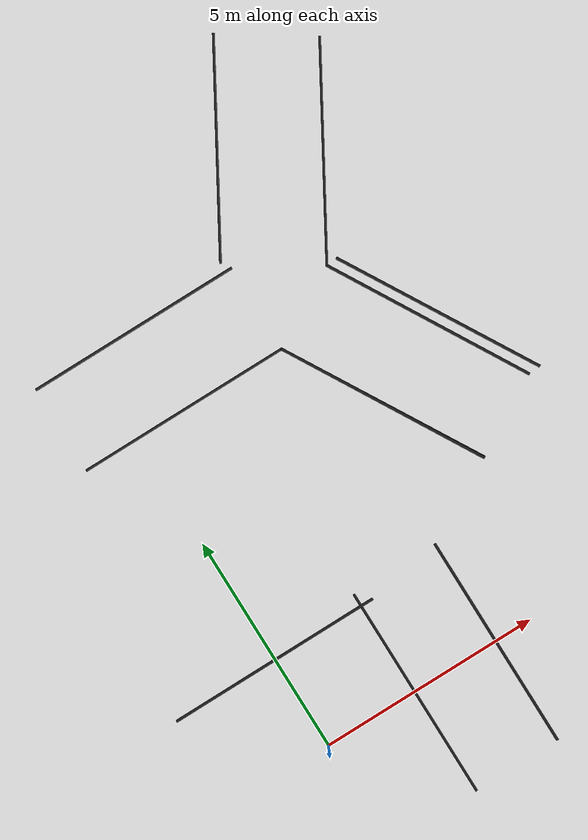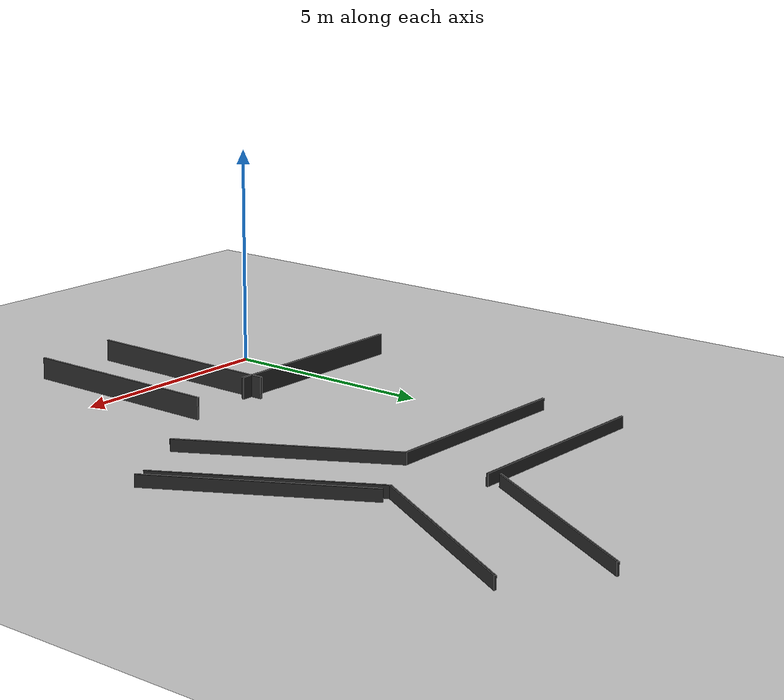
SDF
<sdf version="1.6">
 <world name="default">
  <light name="sun" type="directional">
   <pose>0 0 10 0 -0 0</pose>
   <diffuse>0.8 0.8 0.8 1</diffuse>
   <specular>0.2 0.2 0.2 1</specular>
   <attenuation>
    <range>1000</range>
    <constant>0.9</constant>
    <linear>0.01</linear>
    <quadratic>0.001</quadratic>
   </attenuation>
   <direction>-0.5 0.1 -0.9</direction>
  </light>
  <model name="ground_plane">
   <static>1</static>
   <link name="link">
    <collision name="collision">
     <geometry><plane><normal>0 0 1</normal><size>100 100</size></plane></geometry>
     <surface><friction><ode><mu>100</mu><mu2>50</mu2></ode></friction></surface>
    </collision>
    <visual name="visual">
     <cast_shadows>0</cast_shadows>
     <geometry><plane><normal>0 0 1</normal><size>100 100</size></plane></geometry>
     <material>
      <script><uri>file://media/materials/scripts/gazebo.material</uri><name>Gazebo/White</name></script>
     </material>
    </visual>
   </link>
  </model>
  <gravity>0 0 -9.8</gravity>
  <magnetic_field>6e-06 2.3e-05 -4.2e-05</magnetic_field>
  <atmosphere type="adiabatic"/>
  <physics name="default_physics" default="0" type="ode">
   <max_step_size>0.001</max_step_size>
   <real_time_factor>1</real_time_factor>
   <real_time_update_rate>1000</real_time_update_rate>
  </physics>
  <scene><ambient>0.4 0.4 0.4 1</ambient><background>0.7 0.7 0.7 1</background><shadows>1</shadows></scene>
  <spherical_coordinates>
   <surface_model>EARTH_WGS84</surface_model>
   <latitude_deg>0</latitude_deg>
   <longitude_deg>0</longitude_deg>
   <elevation>0</elevation>
   <heading_deg>0</heading_deg>
  </spherical_coordinates>
  <model name="MazeWallOuter">
   <link name="link">
    <inertial>
     <mass>1</mass>
     <inertia>
      <ixx>0.166667</ixx>
      <ixy>0</ixy>
      <ixz>0</ixz>
      <iyy>0.166667</iyy>
      <iyz>0</iyz>
      <izz>0.166667</izz>
     </inertia>
    </inertial>
    <pose>2.13401 0 0 0 -0 0</pose>
    <visual name="visual">
     <geometry><box><size>0.05 4.8453 0.5</size></box></geometry>
     <material>
      <script><name>Gazebo/FlatBlack</name><uri>file://media/materials/scripts/gazebo.material</uri></script>
      <shader type="pixel"><normal_map>__default__</normal_map></shader>
      <ambient>0.1 0.1 0.1 1</ambient>
      <diffuse>0.1 0.1 0.1 1</diffuse>
      <specular>0.01 0.01 0.01 1</specular>
      <emissive>0 0 0 1</emissive>
     </material>
    </visual>
    <collision name="collision">
     <geometry><box><size>0.05 4.8453 0.5</size></box></geometry>
     <surface>
      <friction>
       <ode><mu>1</mu><mu2>1</mu2><fdir1>0 0 0</fdir1><slip1>0</slip1><slip2>0</slip2></ode>
       <torsional>
        <coefficient>1</coefficient>
        <patch_radius>0</patch_radius>
        <surface_radius>0</surface_radius>
        <use_patch_radius>1</use_patch_radius>
        <ode><slip>0</slip></ode>
       </torsional>
      </friction>
      <bounce><restitution_coefficient>0</restitution_coefficient><threshold>1e+06</threshold></bounce>
      <contact>
       <collide_without_contact>0</collide_without_contact>
       <collide_without_contact_bitmask>1</collide_without_contact_bitmask>
       <collide_bitmask>1</collide_bitmask>
       <ode>
        <soft_cfm>0</soft_cfm>
        <soft_erp>0.2</soft_erp>
        <kp>1e+13</kp>
        <kd>1</kd>
        <max_vel>0.01</max_vel>
        <min_depth>0</min_depth>
       </ode>
       <bullet>
        <split_impulse>1</split_impulse>
        <split_impulse_penetration_threshold>-0.01</split_impulse_penetration_threshold>
        <soft_cfm>0</soft_cfm>
        <soft_erp>0.2</soft_erp>
        <kp>1e+13</kp>
        <kd>1</kd>
       </bullet>
      </contact>
     </surface>
    </collision>
   </link>
   <static>1</static>
   <pose>0 0 0.25 0 -0 0</pose>
  </model>
  <model name="MazeWallOuter_clone">
   <link name="link">
    <inertial>
     <mass>1</mass>
     <inertia>
      <ixx>0.166667</ixx>
      <ixy>0</ixy>
      <ixz>0</ixz>
      <iyy>0.166667</iyy>
      <iyz>0</iyz>
      <izz>0.166667</izz>
     </inertia>
    </inertial>
    <pose>2.13401 0 0 0 -0 0</pose>
    <visual name="visual">
     <geometry><box><size>0.05 4.8453 0.5</size></box></geometry>
     <material>
      <script><name>Gazebo/FlatBlack</name><uri>file://media/materials/scripts/gazebo.material</uri></script>
      <shader type="pixel"><normal_map>__default__</normal_map></shader>
      <ambient>0.1 0.1 0.1 1</ambient>
      <diffuse>0.1 0.1 0.1 1</diffuse>
      <specular>0.01 0.01 0.01 1</specular>
      <emissive>0 0 0 1</emissive>
     </material>
    </visual>
    <collision name="collision">
     <geometry><box><size>0.05 4.8453 0.5</size></box></geometry>
     <surface>
      <friction>
       <ode><mu>1</mu><mu2>1</mu2><fdir1>0 0 0</fdir1><slip1>0</slip1><slip2>0</slip2></ode>
       <torsional>
        <coefficient>1</coefficient>
        <patch_radius>0</patch_radius>
        <surface_radius>0</surface_radius>
        <use_patch_radius>1</use_patch_radius>
        <ode><slip>0</slip></ode>
       </torsional>
      </friction>
      <bounce><restitution_coefficient>0</restitution_coefficient><threshold>1e+06</threshold></bounce>
      <contact>
       <collide_without_contact>0</collide_without_contact>
       <collide_without_contact_bitmask>1</collide_without_contact_bitmask>
       <collide_bitmask>1</collide_bitmask>
       <ode>
        <soft_cfm>0</soft_cfm>
        <soft_erp>0.2</soft_erp>
        <kp>1e+13</kp>
        <kd>1</kd>
        <max_vel>0.01</max_vel>
        <min_depth>0</min_depth>
       </ode>
       <bullet>
        <split_impulse>1</split_impulse>
        <split_impulse_penetration_threshold>-0.01</split_impulse_penetration_threshold>
        <soft_cfm>0</soft_cfm>
        <soft_erp>0.2</soft_erp>
        <kp>1e+13</kp>
        <kd>1</kd>
       </bullet>
      </contact>
     </surface>
    </collision>
   </link>
   <static>1</static>
   <pose>2 0 0.25 0 -0 0</pose>
  </model>
  <model name="MazeWallOuter_clone_clone">
   <link name="link">
    <inertial>
     <mass>1</mass>
     <inertia>
      <ixx>0.166667</ixx>
      <ixy>0</ixy>
      <ixz>0</ixz>
      <iyy>0.166667</iyy>
      <iyz>0</iyz>
      <izz>0.166667</izz>
     </inertia>
    </inertial>
    <pose>2.13401 0 0 0 -0 0</pose>
    <visual name="visual">
     <geometry><box><size>0.05 4.8453 0.5</size></box></geometry>
     <material>
      <script><name>Gazebo/FlatBlack</name><uri>file://media/materials/scripts/gazebo.material</uri></script>
      <shader type="pixel"><normal_map>__default__</normal_map></shader>
      <ambient>0.1 0.1 0.1 1</ambient>
      <diffuse>0.1 0.1 0.1 1</diffuse>
      <specular>0.01 0.01 0.01 1</specular>
      <emissive>0 0 0 1</emissive>
     </material>
    </visual>
    <collision name="collision">
     <geometry><box><size>0.05 4.8453 0.5</size></box></geometry>
     <surface>
      <friction>
       <ode><mu>1</mu><mu2>1</mu2><fdir1>0 0 0</fdir1><slip1>0</slip1><slip2>0</slip2></ode>
       <torsional>
        <coefficient>1</coefficient>
        <patch_radius>0</patch_radius>
        <surface_radius>0</surface_radius>
        <use_patch_radius>1</use_patch_radius>
        <ode><slip>0</slip></ode>
       </torsional>
      </friction>
      <bounce><restitution_coefficient>0</restitution_coefficient><threshold>1e+06</threshold></bounce>
      <contact>
       <collide_without_contact>0</collide_without_contact>
       <collide_without_contact_bitmask>1</collide_without_contact_bitmask>
       <collide_bitmask>1</collide_bitmask>
       <ode>
        <soft_cfm>0</soft_cfm>
        <soft_erp>0.2</soft_erp>
        <kp>1e+13</kp>
        <kd>1</kd>
        <max_vel>0.01</max_vel>
        <min_depth>0</min_depth>
       </ode>
       <bullet>
        <split_impulse>1</split_impulse>
        <split_impulse_penetration_threshold>-0.01</split_impulse_penetration_threshold>
        <soft_cfm>0</soft_cfm>
        <soft_erp>0.2</soft_erp>
        <kp>1e+13</kp>
        <kd>1</kd>
       </bullet>
      </contact>
     </surface>
    </collision>
   </link>
   <static>1</static>
   <pose>0 0 0.25 0 -0 1.5708</pose>
  </model>
  <model name="Y">
   <link name="link">
    <inertial>
     <mass>1</mass>
     <inertia>
      <ixx>0.166667</ixx>
      <ixy>0</ixy>
      <ixz>0</ixz>
      <iyy>0.166667</iyy>
      <iyz>0</iyz>
      <izz>0.166667</izz>
     </inertia>
    </inertial>
    <pose>2.13401 0 0 0 -0 0</pose>
    <visual name="ModelPreview_4::link::visual_2">
     <geometry><box><size>0.05 4.8453 0.5</size></box></geometry>
     <material>
      <script><name>Gazebo/FlatBlack</name><uri>file://media/materials/scripts/gazebo.material</uri></script>
      <shader type="pixel"><normal_map>__default__</normal_map></shader>
      <ambient>0.1 0.1 0.1 1</ambient>
      <diffuse>0.1 0.1 0.1 1</diffuse>
      <specular>0.01 0.01 0.01 1</specular>
      <emissive>0 0 0 1</emissive>
     </material>
     <pose>-2.08 -3.61 0 0 -0 2.0944</pose>
    </visual>
    <visual name="ModelPreview_4::link::visual_1">
     <geometry><box><size>0.05 4.8453 0.5</size></box></geometry>
     <material>
      <script><name>Gazebo/FlatBlack</name><uri>file://media/materials/scripts/gazebo.material</uri></script>
      <shader type="pixel"><normal_map>__default__</normal_map></shader>
      <ambient>0.1 0.1 0.1 1</ambient>
      <diffuse>0.1 0.1 0.1 1</diffuse>
      <specular>0.01 0.01 0.01 1</specular>
      <emissive>0 0 0 1</emissive>
     </material>
     <pose>2 0 0 0 -0 0</pose>
    </visual>
    <visual name="visual">
     <geometry><box><size>0.05 4.8453 0.5</size></box></geometry>
     <material>
      <script><name>Gazebo/FlatBlack</name><uri>file://media/materials/scripts/gazebo.material</uri></script>
      <shader type="pixel"><normal_map>__default__</normal_map></shader>
      <ambient>0.1 0.1 0.1 1</ambient>
      <diffuse>0.1 0.1 0.1 1</diffuse>
      <specular>0.01 0.01 0.01 1</specular>
      <emissive>0 0 0 1</emissive>
     </material>
    </visual>
    <visual name="ModelPreview_4::link::visual_3">
     <geometry><box><size>0.05 4.8453 0.5</size></box></geometry>
     <material>
      <script><name>Gazebo/FlatBlack</name><uri>file://media/materials/scripts/gazebo.material</uri></script>
      <shader type="pixel"><normal_map>__default__</normal_map></shader>
      <ambient>0.1 0.1 0.1 1</ambient>
      <diffuse>0.1 0.1 0.1 1</diffuse>
      <specular>0.01 0.01 0.01 1</specular>
      <emissive>0 0 0 1</emissive>
     </material>
     <pose>-1.08 -5.61 0 0 -0 2.0944</pose>
    </visual>
    <collision name="collision">
     <geometry><box><size>0.05 4.8453 0.5</size></box></geometry>
     <surface>
      <friction>
       <ode><mu>1</mu><mu2>1</mu2><fdir1>0 0 0</fdir1><slip1>0</slip1><slip2>0</slip2></ode>
       <torsional>
        <coefficient>1</coefficient>
        <patch_radius>0</patch_radius>
        <surface_radius>0</surface_radius>
        <use_patch_radius>1</use_patch_radius>
        <ode><slip>0</slip></ode>
       </torsional>
      </friction>
      <bounce><restitution_coefficient>0</restitution_coefficient><threshold>1e+06</threshold></bounce>
      <contact>
       <collide_without_contact>0</collide_without_contact>
       <collide_without_contact_bitmask>1</collide_without_contact_bitmask>
       <collide_bitmask>1</collide_bitmask>
       <ode>
        <soft_cfm>0</soft_cfm>
        <soft_erp>0.2</soft_erp>
        <kp>1e+13</kp>
        <kd>1</kd>
        <max_vel>0.01</max_vel>
        <min_depth>0</min_depth>
       </ode>
       <bullet>
        <split_impulse>1</split_impulse>
        <split_impulse_penetration_threshold>-0.01</split_impulse_penetration_threshold>
        <soft_cfm>0</soft_cfm>
        <soft_erp>0.2</soft_erp>
        <kp>1e+13</kp>
        <kd>1</kd>
       </bullet>
      </contact>
     </surface>
    </collision>
   </link>
   <static>1</static>
   <pose>1.17025 5.46288 0 0 -0 1.57</pose>
  </model>
  <model name="Y_0">
   <link name="link">
    <inertial>
     <mass>1</mass>
     <inertia>
      <ixx>0.166667</ixx>
      <ixy>0</ixy>
      <ixz>0</ixz>
      <iyy>0.166667</iyy>
      <iyz>0</iyz>
      <izz>0.166667</izz>
     </inertia>
    </inertial>
    <pose>2.13401 0 0 0 -0 0</pose>
    <visual name="ModelPreview_4::link::visual_2">
     <geometry><box><size>0.05 4.8453 0.5</size></box></geometry>
     <material>
      <script><name>Gazebo/FlatBlack</name><uri>file://media/materials/scripts/gazebo.material</uri></script>
      <shader type="pixel"><normal_map>__default__</normal_map></shader>
      <ambient>0.1 0.1 0.1 1</ambient>
      <diffuse>0.1 0.1 0.1 1</diffuse>
      <specular>0.01 0.01 0.01 1</specular>
      <emissive>0 0 0 1</emissive>
     </material>
     <pose>-2.08 -3.61 0 0 -0 2.0944</pose>
    </visual>
    <visual name="ModelPreview_4::link::visual_1">
     <geometry><box><size>0.05 4.8453 0.5</size></box></geometry>
     <material>
      <script><name>Gazebo/FlatBlack</name><uri>file://media/materials/scripts/gazebo.material</uri></script>
      <shader type="pixel"><normal_map>__default__</normal_map></shader>
      <ambient>0.1 0.1 0.1 1</ambient>
      <diffuse>0.1 0.1 0.1 1</diffuse>
      <specular>0.01 0.01 0.01 1</specular>
      <emissive>0 0 0 1</emissive>
     </material>
     <pose>2 0 0 0 -0 0</pose>
    </visual>
    <visual name="visual">
     <geometry><box><size>0.05 4.8453 0.5</size></box></geometry>
     <material>
      <script><name>Gazebo/FlatBlack</name><uri>file://media/materials/scripts/gazebo.material</uri></script>
      <shader type="pixel"><normal_map>__default__</normal_map></shader>
      <ambient>0.1 0.1 0.1 1</ambient>
      <diffuse>0.1 0.1 0.1 1</diffuse>
      <specular>0.01 0.01 0.01 1</specular>
      <emissive>0 0 0 1</emissive>
     </material>
    </visual>
    <visual name="ModelPreview_4::link::visual_3">
     <geometry><box><size>0.05 4.8453 0.5</size></box></geometry>
     <material>
      <script><name>Gazebo/FlatBlack</name><uri>file://media/materials/scripts/gazebo.material</uri></script>
      <shader type="pixel"><normal_map>__default__</normal_map></shader>
      <ambient>0.1 0.1 0.1 1</ambient>
      <diffuse>0.1 0.1 0.1 1</diffuse>
      <specular>0.01 0.01 0.01 1</specular>
      <emissive>0 0 0 1</emissive>
     </material>
     <pose>-1.08 -5.61 0 0 -0 2.0944</pose>
    </visual>
    <collision name="collision">
     <geometry><box><size>0.05 4.8453 0.5</size></box></geometry>
     <surface>
      <friction>
       <ode><mu>1</mu><mu2>1</mu2><fdir1>0 0 0</fdir1><slip1>0</slip1><slip2>0</slip2></ode>
       <torsional>
        <coefficient>1</coefficient>
        <patch_radius>0</patch_radius>
        <surface_radius>0</surface_radius>
        <use_patch_radius>1</use_patch_radius>
        <ode><slip>0</slip></ode>
       </torsional>
      </friction>
      <bounce><restitution_coefficient>0</restitution_coefficient><threshold>1e+06</threshold></bounce>
      <contact>
       <collide_without_contact>0</collide_without_contact>
       <collide_without_contact_bitmask>1</collide_without_contact_bitmask>
       <collide_bitmask>1</collide_bitmask>
       <ode>
        <soft_cfm>0</soft_cfm>
        <soft_erp>0.2</soft_erp>
        <kp>1e+13</kp>
        <kd>1</kd>
        <max_vel>0.01</max_vel>
        <min_depth>0</min_depth>
       </ode>
       <bullet>
        <split_impulse>1</split_impulse>
        <split_impulse_penetration_threshold>-0.01</split_impulse_penetration_threshold>
        <soft_cfm>0</soft_cfm>
        <soft_erp>0.2</soft_erp>
        <kp>1e+13</kp>
        <kd>1</kd>
       </bullet>
      </contact>
     </surface>
    </collision>
   </link>
   <static>1</static>
   <pose>8.36816 7.55022 0 0 0 -2.62192</pose>
  </model>
 </world>
</sdf>
